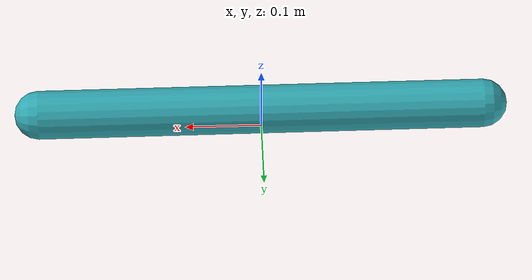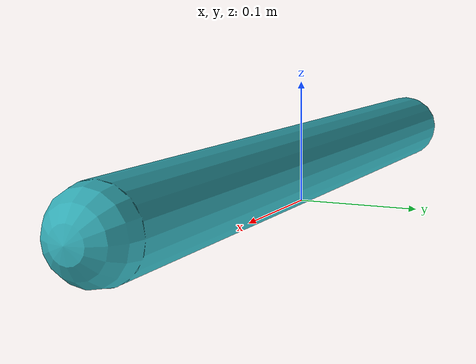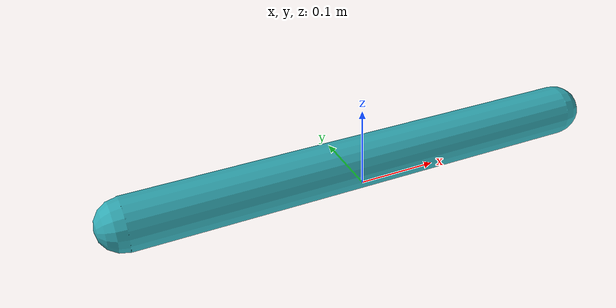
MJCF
<mujoco model="stick_prim_cyan_32">
  <compiler angle="radian"/>
  <asset>
  </asset>
  <worldbody>
    <body name="stick_prim_cyan_32">
      <freejoint/>
      <geom name="stick_prim_cyan_32_g0" type="capsule" size="0.032" fromto="-0.293 0 0.032 0.293 0 0.032" rgba="0.2 0.68 0.72 1" mass="0.05" friction="0.05 0.05 0.005" condim="4"/>
    </body>
  </worldbody>
</mujoco>
